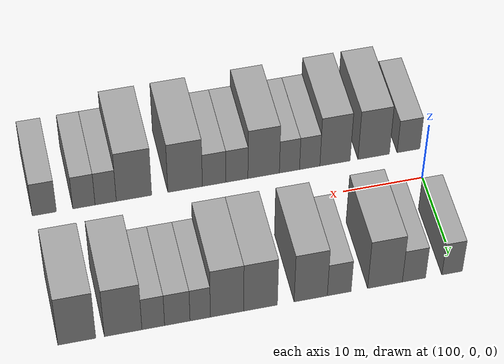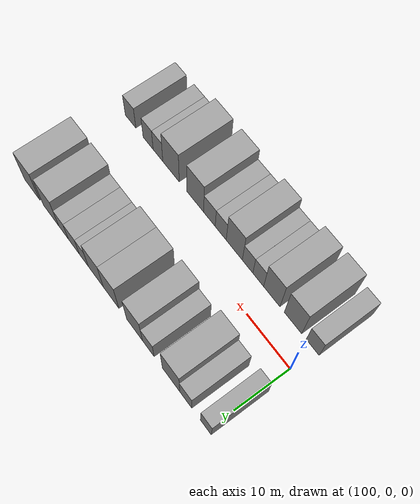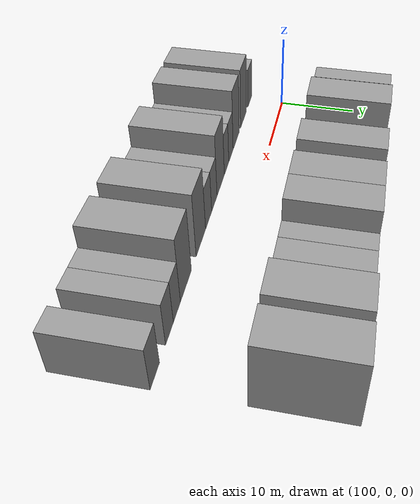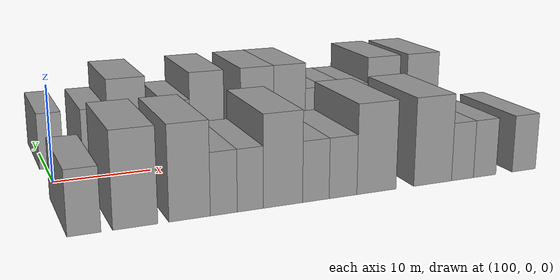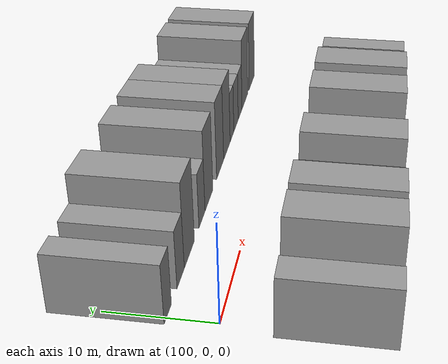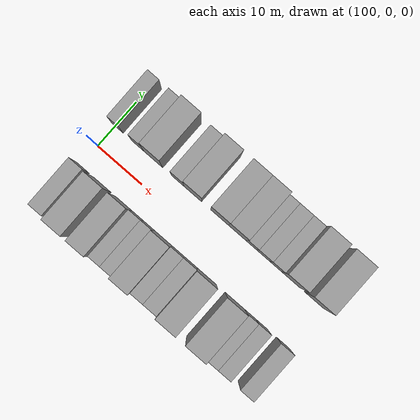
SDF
<sdf version="1.6">
 <world name="default">
  <model name="building_26">
   <static>1</static>
   <pose>100.5548 9.5000 0 0.000000 0.000000 1.570796</pose>
   <link name="link">
    <pose>0 0 3.00 0 0 0</pose>
    <collision name="collision"><geometry><box><size>10.0000 2.5036 6.0000</size></box></geometry></collision>
    <visual name="visual">
     <cast_shadows>0</cast_shadows>
     <geometry><box><size>10.0000 2.5036 6.0000</size></box></geometry>
     <material>
      <script>
       <uri>model://grey_wall/materials/scripts</uri>
       <uri>model://grey_wall/materials/textures</uri>
       <name>vrc/grey_wall</name>
      </script>
     </material>
    </visual>
   </link>
  </model>
  <model name="building_27">
   <static>1</static>
   <pose>105.2196 9.5000 0 0.000000 0.000000 1.570796</pose>
   <link name="link">
    <pose>0 0 3.00 0 0 0</pose>
    <collision name="collision"><geometry><box><size>10.0000 2.8261 6.0000</size></box></geometry></collision>
    <visual name="visual">
     <cast_shadows>0</cast_shadows>
     <geometry><box><size>10.0000 2.8261 6.0000</size></box></geometry>
     <material>
      <script>
       <uri>model://grey_wall/materials/scripts</uri>
       <uri>model://grey_wall/materials/textures</uri>
       <name>vrc/grey_wall</name>
      </script>
     </material>
    </visual>
   </link>
  </model>
  <model name="building_28">
   <static>1</static>
   <pose>108.7303 9.5000 0 0.000000 0.000000 1.570796</pose>
   <link name="link">
    <pose>0 0 4.50 0 0 0</pose>
    <collision name="collision"><geometry><box><size>10.0000 4.1952 9.0000</size></box></geometry></collision>
    <visual name="visual">
     <cast_shadows>0</cast_shadows>
     <geometry><box><size>10.0000 4.1952 9.0000</size></box></geometry>
     <material>
      <script>
       <uri>model://grey_wall/materials/scripts</uri>
       <uri>model://grey_wall/materials/textures</uri>
       <name>vrc/grey_wall</name>
      </script>
     </material>
    </visual>
   </link>
  </model>
  <model name="building_29">
   <static>1</static>
   <pose>114.2613 9.5000 0 0.000000 0.000000 1.570796</pose>
   <link name="link">
    <pose>0 0 3.00 0 0 0</pose>
    <collision name="collision"><geometry><box><size>10.0000 2.8669 6.0000</size></box></geometry></collision>
    <visual name="visual">
     <cast_shadows>0</cast_shadows>
     <geometry><box><size>10.0000 2.8669 6.0000</size></box></geometry>
     <material>
      <script>
       <uri>model://grey_wall/materials/scripts</uri>
       <uri>model://grey_wall/materials/textures</uri>
       <name>vrc/grey_wall</name>
      </script>
     </material>
    </visual>
   </link>
  </model>
  <model name="building_30">
   <static>1</static>
   <pose>117.6817 9.5000 0 0.000000 0.000000 1.570796</pose>
   <link name="link">
    <pose>0 0 4.50 0 0 0</pose>
    <collision name="collision"><geometry><box><size>10.0000 3.9738 9.0000</size></box></geometry></collision>
    <visual name="visual">
     <cast_shadows>0</cast_shadows>
     <geometry><box><size>10.0000 3.9738 9.0000</size></box></geometry>
     <material>
      <script>
       <uri>model://grey_wall/materials/scripts</uri>
       <uri>model://grey_wall/materials/textures</uri>
       <name>vrc/grey_wall</name>
      </script>
     </material>
    </visual>
   </link>
  </model>
  <model name="building_31">
   <static>1</static>
   <pose>123.6691 9.5000 0 0.000000 0.000000 1.570796</pose>
   <link name="link">
    <pose>0 0 4.50 0 0 0</pose>
    <collision name="collision"><geometry><box><size>10.0000 4.0010 9.0000</size></box></geometry></collision>
    <visual name="visual">
     <cast_shadows>0</cast_shadows>
     <geometry><box><size>10.0000 4.0010 9.0000</size></box></geometry>
     <material>
      <script>
       <uri>model://grey_wall/materials/scripts</uri>
       <uri>model://grey_wall/materials/textures</uri>
       <name>vrc/grey_wall</name>
      </script>
     </material>
    </visual>
   </link>
  </model>
  <model name="building_32">
   <static>1</static>
   <pose>127.6416 9.5000 0 0.000000 0.000000 1.570796</pose>
   <link name="link">
    <pose>0 0 4.50 0 0 0</pose>
    <collision name="collision"><geometry><box><size>10.0000 3.9440 9.0000</size></box></geometry></collision>
    <visual name="visual">
     <cast_shadows>0</cast_shadows>
     <geometry><box><size>10.0000 3.9440 9.0000</size></box></geometry>
     <material>
      <script>
       <uri>model://grey_wall/materials/scripts</uri>
       <uri>model://grey_wall/materials/textures</uri>
       <name>vrc/grey_wall</name>
      </script>
     </material>
    </visual>
   </link>
  </model>
  <model name="building_33">
   <static>1</static>
   <pose>130.8150 9.5000 0 0.000000 0.000000 1.570796</pose>
   <link name="link">
    <pose>0 0 3.00 0 0 0</pose>
    <collision name="collision"><geometry><box><size>10.0000 2.4028 6.0000</size></box></geometry></collision>
    <visual name="visual">
     <cast_shadows>0</cast_shadows>
     <geometry><box><size>10.0000 2.4028 6.0000</size></box></geometry>
     <material>
      <script>
       <uri>model://grey_wall/materials/scripts</uri>
       <uri>model://grey_wall/materials/textures</uri>
       <name>vrc/grey_wall</name>
      </script>
     </material>
    </visual>
   </link>
  </model>
  <model name="building_34">
   <static>1</static>
   <pose>133.5096 9.5000 0 0.000000 0.000000 1.570796</pose>
   <link name="link">
    <pose>0 0 3.00 0 0 0</pose>
    <collision name="collision"><geometry><box><size>10.0000 2.9864 6.0000</size></box></geometry></collision>
    <visual name="visual">
     <cast_shadows>0</cast_shadows>
     <geometry><box><size>10.0000 2.9864 6.0000</size></box></geometry>
     <material>
      <script>
       <uri>model://grey_wall/materials/scripts</uri>
       <uri>model://grey_wall/materials/textures</uri>
       <name>vrc/grey_wall</name>
      </script>
     </material>
    </visual>
   </link>
  </model>
  <model name="building_35">
   <static>1</static>
   <pose>136.3296 9.5000 0 0.000000 0.000000 1.570796</pose>
   <link name="link">
    <pose>0 0 3.00 0 0 0</pose>
    <collision name="collision"><geometry><box><size>10.0000 2.6536 6.0000</size></box></geometry></collision>
    <visual name="visual">
     <cast_shadows>0</cast_shadows>
     <geometry><box><size>10.0000 2.6536 6.0000</size></box></geometry>
     <material>
      <script>
       <uri>model://grey_wall/materials/scripts</uri>
       <uri>model://grey_wall/materials/textures</uri>
       <name>vrc/grey_wall</name>
      </script>
     </material>
    </visual>
   </link>
  </model>
  <model name="building_36">
   <static>1</static>
   <pose>139.8455 9.5000 0 0.000000 0.000000 1.570796</pose>
   <link name="link">
    <pose>0 0 4.50 0 0 0</pose>
    <collision name="collision"><geometry><box><size>10.0000 4.3783 9.0000</size></box></geometry></collision>
    <visual name="visual">
     <cast_shadows>0</cast_shadows>
     <geometry><box><size>10.0000 4.3783 9.0000</size></box></geometry>
     <material>
      <script>
       <uri>model://grey_wall/materials/scripts</uri>
       <uri>model://grey_wall/materials/textures</uri>
       <name>vrc/grey_wall</name>
      </script>
     </material>
    </visual>
   </link>
  </model>
  <model name="building_37">
   <static>1</static>
   <pose>145.2298 9.5000 0 0.000000 0.000000 1.570796</pose>
   <link name="link">
    <pose>0 0 4.50 0 0 0</pose>
    <collision name="collision"><geometry><box><size>10.0000 4.3902 9.0000</size></box></geometry></collision>
    <visual name="visual">
     <cast_shadows>0</cast_shadows>
     <geometry><box><size>10.0000 4.3902 9.0000</size></box></geometry>
     <material>
      <script>
       <uri>model://grey_wall/materials/scripts</uri>
       <uri>model://grey_wall/materials/textures</uri>
       <name>vrc/grey_wall</name>
      </script>
     </material>
    </visual>
   </link>
  </model>
  <model name="building_75">
   <static>1</static>
   <pose>100.5145 -9.5000 0 0.000000 0.000000 1.570796</pose>
   <link name="link">
    <pose>0 0 3.00 0 0 0</pose>
    <collision name="collision"><geometry><box><size>10.0000 2.9106 6.0000</size></box></geometry></collision>
    <visual name="visual">
     <cast_shadows>0</cast_shadows>
     <geometry><box><size>10.0000 2.9106 6.0000</size></box></geometry>
     <material>
      <script>
       <uri>model://grey_wall/materials/scripts</uri>
       <uri>model://grey_wall/materials/textures</uri>
       <name>vrc/grey_wall</name>
      </script>
     </material>
    </visual>
   </link>
  </model>
  <model name="building_76">
   <static>1</static>
   <pose>104.9770 -9.5000 0 0.000000 0.000000 1.570796</pose>
   <link name="link">
    <pose>0 0 4.50 0 0 0</pose>
    <collision name="collision"><geometry><box><size>10.0000 4.0143 9.0000</size></box></geometry></collision>
    <visual name="visual">
     <cast_shadows>0</cast_shadows>
     <geometry><box><size>10.0000 4.0143 9.0000</size></box></geometry>
     <material>
      <script>
       <uri>model://grey_wall/materials/scripts</uri>
       <uri>model://grey_wall/materials/textures</uri>
       <name>vrc/grey_wall</name>
      </script>
     </material>
    </visual>
   </link>
  </model>
  <model name="building_77">
   <static>1</static>
   <pose>109.9041 -9.5000 0 0.000000 0.000000 1.570796</pose>
   <link name="link">
    <pose>0 0 4.50 0 0 0</pose>
    <collision name="collision"><geometry><box><size>10.0000 3.8398 9.0000</size></box></geometry></collision>
    <visual name="visual">
     <cast_shadows>0</cast_shadows>
     <geometry><box><size>10.0000 3.8398 9.0000</size></box></geometry>
     <material>
      <script>
       <uri>model://grey_wall/materials/scripts</uri>
       <uri>model://grey_wall/materials/textures</uri>
       <name>vrc/grey_wall</name>
      </script>
     </material>
    </visual>
   </link>
  </model>
  <model name="building_78">
   <static>1</static>
   <pose>113.1118 -9.5000 0 0.000000 0.000000 1.570796</pose>
   <link name="link">
    <pose>0 0 3.00 0 0 0</pose>
    <collision name="collision"><geometry><box><size>10.0000 2.5757 6.0000</size></box></geometry></collision>
    <visual name="visual">
     <cast_shadows>0</cast_shadows>
     <geometry><box><size>10.0000 2.5757 6.0000</size></box></geometry>
     <material>
      <script>
       <uri>model://grey_wall/materials/scripts</uri>
       <uri>model://grey_wall/materials/textures</uri>
       <name>vrc/grey_wall</name>
      </script>
     </material>
    </visual>
   </link>
  </model>
  <model name="building_79">
   <static>1</static>
   <pose>115.6720 -9.5000 0 0.000000 0.000000 1.570796</pose>
   <link name="link">
    <pose>0 0 3.00 0 0 0</pose>
    <collision name="collision"><geometry><box><size>10.0000 2.5446 6.0000</size></box></geometry></collision>
    <visual name="visual">
     <cast_shadows>0</cast_shadows>
     <geometry><box><size>10.0000 2.5446 6.0000</size></box></geometry>
     <material>
      <script>
       <uri>model://grey_wall/materials/scripts</uri>
       <uri>model://grey_wall/materials/textures</uri>
       <name>vrc/grey_wall</name>
      </script>
     </material>
    </visual>
   </link>
  </model>
  <model name="building_80">
   <static>1</static>
   <pose>118.9214 -9.5000 0 0.000000 0.000000 1.570796</pose>
   <link name="link">
    <pose>0 0 4.50 0 0 0</pose>
    <collision name="collision"><geometry><box><size>10.0000 3.9543 9.0000</size></box></geometry></collision>
    <visual name="visual">
     <cast_shadows>0</cast_shadows>
     <geometry><box><size>10.0000 3.9543 9.0000</size></box></geometry>
     <material>
      <script>
       <uri>model://grey_wall/materials/scripts</uri>
       <uri>model://grey_wall/materials/textures</uri>
       <name>vrc/grey_wall</name>
      </script>
     </material>
    </visual>
   </link>
  </model>
  <model name="building_81">
   <static>1</static>
   <pose>122.2718 -9.5000 0 0.000000 0.000000 1.570796</pose>
   <link name="link">
    <pose>0 0 3.00 0 0 0</pose>
    <collision name="collision"><geometry><box><size>10.0000 2.7464 6.0000</size></box></geometry></collision>
    <visual name="visual">
     <cast_shadows>0</cast_shadows>
     <geometry><box><size>10.0000 2.7464 6.0000</size></box></geometry>
     <material>
      <script>
       <uri>model://grey_wall/materials/scripts</uri>
       <uri>model://grey_wall/materials/textures</uri>
       <name>vrc/grey_wall</name>
      </script>
     </material>
    </visual>
   </link>
  </model>
  <model name="building_82">
   <static>1</static>
   <pose>125.1180 -9.5000 0 0.000000 0.000000 1.570796</pose>
   <link name="link">
    <pose>0 0 3.00 0 0 0</pose>
    <collision name="collision"><geometry><box><size>10.0000 2.9461 6.0000</size></box></geometry></collision>
    <visual name="visual">
     <cast_shadows>0</cast_shadows>
     <geometry><box><size>10.0000 2.9461 6.0000</size></box></geometry>
     <material>
      <script>
       <uri>model://grey_wall/materials/scripts</uri>
       <uri>model://grey_wall/materials/textures</uri>
       <name>vrc/grey_wall</name>
      </script>
     </material>
    </visual>
   </link>
  </model>
  <model name="building_83">
   <static>1</static>
   <pose>128.7372 -9.5000 0 0.000000 0.000000 1.570796</pose>
   <link name="link">
    <pose>0 0 4.50 0 0 0</pose>
    <collision name="collision"><geometry><box><size>10.0000 4.2923 9.0000</size></box></geometry></collision>
    <visual name="visual">
     <cast_shadows>0</cast_shadows>
     <geometry><box><size>10.0000 4.2923 9.0000</size></box></geometry>
     <material>
      <script>
       <uri>model://grey_wall/materials/scripts</uri>
       <uri>model://grey_wall/materials/textures</uri>
       <name>vrc/grey_wall</name>
      </script>
     </material>
    </visual>
   </link>
  </model>
  <model name="building_84">
   <static>1</static>
   <pose>135.0628 -9.5000 0 0.000000 0.000000 1.570796</pose>
   <link name="link">
    <pose>0 0 4.50 0 0 0</pose>
    <collision name="collision"><geometry><box><size>10.0000 4.3589 9.0000</size></box></geometry></collision>
    <visual name="visual">
     <cast_shadows>0</cast_shadows>
     <geometry><box><size>10.0000 4.3589 9.0000</size></box></geometry>
     <material>
      <script>
       <uri>model://grey_wall/materials/scripts</uri>
       <uri>model://grey_wall/materials/textures</uri>
       <name>vrc/grey_wall</name>
      </script>
     </material>
    </visual>
   </link>
  </model>
  <model name="building_85">
   <static>1</static>
   <pose>138.5452 -9.5000 0 0.000000 0.000000 1.570796</pose>
   <link name="link">
    <pose>0 0 3.00 0 0 0</pose>
    <collision name="collision"><geometry><box><size>10.0000 2.6058 6.0000</size></box></geometry></collision>
    <visual name="visual">
     <cast_shadows>0</cast_shadows>
     <geometry><box><size>10.0000 2.6058 6.0000</size></box></geometry>
     <material>
      <script>
       <uri>model://grey_wall/materials/scripts</uri>
       <uri>model://grey_wall/materials/textures</uri>
       <name>vrc/grey_wall</name>
      </script>
     </material>
    </visual>
   </link>
  </model>
  <model name="building_86">
   <static>1</static>
   <pose>141.2145 -9.5000 0 0.000000 0.000000 1.570796</pose>
   <link name="link">
    <pose>0 0 3.00 0 0 0</pose>
    <collision name="collision"><geometry><box><size>10.0000 2.7327 6.0000</size></box></geometry></collision>
    <visual name="visual">
     <cast_shadows>0</cast_shadows>
     <geometry><box><size>10.0000 2.7327 6.0000</size></box></geometry>
     <material>
      <script>
       <uri>model://grey_wall/materials/scripts</uri>
       <uri>model://grey_wall/materials/textures</uri>
       <name>vrc/grey_wall</name>
      </script>
     </material>
    </visual>
   </link>
  </model>
  <model name="building_87">
   <static>1</static>
   <pose>146.0519 -9.5000 0 0.000000 0.000000 1.570796</pose>
   <link name="link">
    <pose>0 0 3.00 0 0 0</pose>
    <collision name="collision"><geometry><box><size>10.0000 2.9422 6.0000</size></box></geometry></collision>
    <visual name="visual">
     <cast_shadows>0</cast_shadows>
     <geometry><box><size>10.0000 2.9422 6.0000</size></box></geometry>
     <material>
      <script>
       <uri>model://grey_wall/materials/scripts</uri>
       <uri>model://grey_wall/materials/textures</uri>
       <name>vrc/grey_wall</name>
      </script>
     </material>
    </visual>
   </link>
  </model>
 </world>
</sdf>
